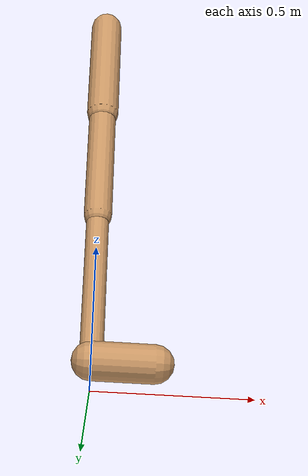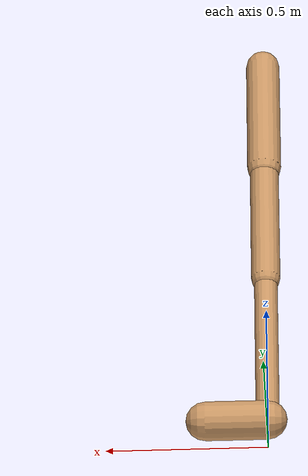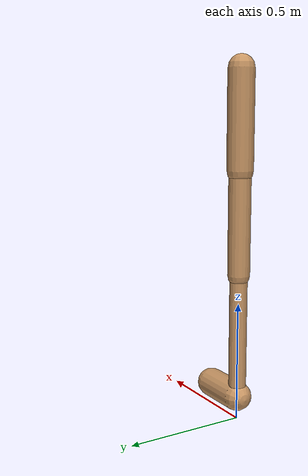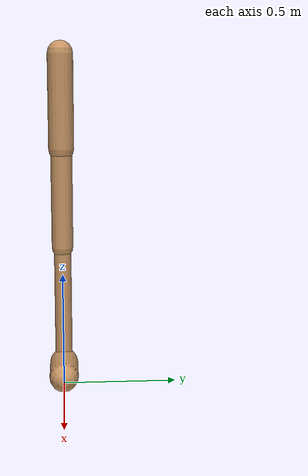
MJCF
<mujoco model="walker2d">
  <compiler angle="degree" coordinate="global" inertiafromgeom="true" />
  <default>
    <joint armature="0.01" damping=".1" limited="true" />
    <geom conaffinity="0" condim="3" contype="1" density="1000" friction="0.8 .1 .1" rgba="0.8 0.6 .4 1" />
  </default>
  <option integrator="RK4" timestep="0.002" />
  <worldbody>

    <body name="torso" pos="0 0 -0.048805651226736524">
      <joint armature="0" axis="1 0 0" damping="0" limited="false" name="ignorex" pos="0 0 0" stiffness="0" type="slide" />
      <joint armature="0" axis="0 0 1" damping="0" limited="false" name="ignorez" pos="0 0 0" ref="1.25" stiffness="0" type="slide" />
      <joint armature="0" axis="0 1 0" damping="0" limited="false" name="ignorey" pos="0 0 0" stiffness="0" type="hinge" />
      <geom fromto="0 0 1.45 0 0 1.05" name="torso_geom" size="0.05410712782647961" type="capsule" />
      <body name="thigh">
        <joint axis="0 -1 0" name="thigh_joint" pos="0 0 1.05" range="-150 0" type="hinge" />
        <geom fromto="0.0 0.0 1.05 0.0 0.0 0.6231184663705593" name="thigh_geom" size="0.04589281300117612" type="capsule" />
        <body name="leg" pos="0.0 0.0 0.023118466370559365">
          <joint axis="0 -1 0" name="leg_joint" pos="0 0 0.6" range="-150 0" type="hinge" />
          <geom fromto="0.0 0.0 0.6 0.0 0.0 0.12568718485617714" name="leg_geom" size="0.03671425040094089" type="capsule" />
          <body name="foot" pos="0.0 0.0 0.02568718485617713">
            <joint axis="0 -1 0" name="foot_joint" pos="0 0 0.1" range="-45 45" type="hinge" />
            <geom fromto="0.0 0.0 0.10000000000000002 0.19330288544300653 0.0 0.10000000000000002" name="foot_geom" size="0.061186185805473955" type="capsule" />
          </body>
        </body>
      </body>

      <body name="thigh_left">
        <joint axis="0 -1 0" name="thigh_left_joint" pos="0 0 1.05" range="-150 0" type="hinge" />
        <geom fromto="0.0 0.0 1.05 0.0 0.0 0.6231184663705593" name="thigh_left_geom" rgba=".7 .3 .6 1" size="0.04589281300117612" type="capsule" />
        <body name="leg_left" pos="0.0 0.0 0.023118466370559365">
          <joint axis="0 -1 0" name="leg_left_joint" pos="0 0 0.6" range="-150 0" type="hinge" />
          <geom fromto="0.0 0.0 0.6 0.0 0.0 0.12568718485617714" name="leg_left_geom" rgba=".7 .3 .6 1" size="0.03671425040094089" type="capsule" />
          <body name="foot_left" pos="0.0 0.0 0.02568718485617713">
            <joint axis="0 -1 0" name="foot_left_joint" pos="0 0 0.1" range="-45 45" type="hinge" />
            <geom fromto="0.0 0.0 0.10000000000000002 0.19330288544300653 0.0 0.10000000000000002" name="foot_left_geom" rgba=".7 .3 .6 1" size="0.061186185805473955" type="capsule" />
          </body>
        </body>
      </body>
    </body>
  </worldbody>
  <actuator>

    <motor ctrllimited="true" ctrlrange="-1.0 1.0" gear="100" joint="thigh_joint" />
    <motor ctrllimited="true" ctrlrange="-1.0 1.0" gear="100" joint="leg_joint" />
    <motor ctrllimited="true" ctrlrange="-1.0 1.0" gear="100" joint="foot_joint" />
    <motor ctrllimited="true" ctrlrange="-1.0 1.0" gear="100" joint="thigh_left_joint" />
    <motor ctrllimited="true" ctrlrange="-1.0 1.0" gear="100" joint="leg_left_joint" />
    <motor ctrllimited="true" ctrlrange="-1.0 1.0" gear="100" joint="foot_left_joint" />

  </actuator>
</mujoco>
